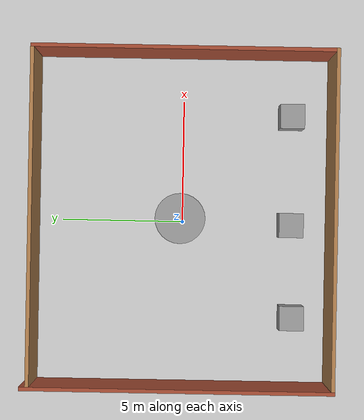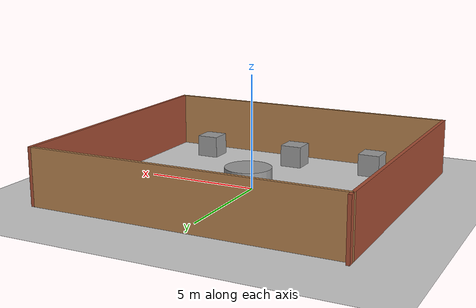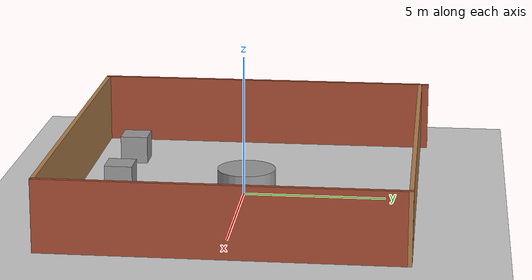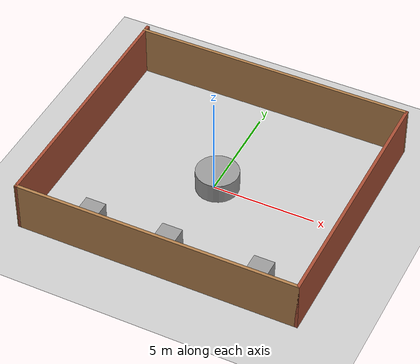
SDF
<sdf version="1.6">
 <world name="default">
  <light name="sun" type="directional">
   <pose>0 0 10 0 -0 0</pose>
   <diffuse>0.8 0.8 0.8 1</diffuse>
   <specular>0.2 0.2 0.2 1</specular>
   <attenuation>
    <range>1000</range>
    <constant>0.9</constant>
    <linear>0.01</linear>
    <quadratic>0.001</quadratic>
   </attenuation>
   <direction>-0.5 0.1 -0.9</direction>
  </light>
  <model name="ground_plane">
   <static>1</static>
   <link name="link">
    <collision name="collision">
     <geometry><plane><normal>0 0 1</normal><size>100 100</size></plane></geometry>
     <surface>
      <contact><collide_bitmask>65535</collide_bitmask></contact>
      <friction><ode><mu>100</mu><mu2>50</mu2></ode></friction>
     </surface>
    </collision>
    <visual name="visual">
     <cast_shadows>0</cast_shadows>
     <geometry><plane><normal>0 0 1</normal><size>100 100</size></plane></geometry>
     <material>
      <script><uri>file://media/materials/scripts/gazebo.material</uri><name>Gazebo/Grey</name></script>
     </material>
    </visual>
   </link>
  </model>
  <gravity>0 0 -9.8</gravity>
  <magnetic_field>6e-06 2.3e-05 -4.2e-05</magnetic_field>
  <atmosphere type="adiabatic"/>
  <physics name="default_physics" default="0" type="ode">
   <max_step_size>0.001</max_step_size>
   <real_time_factor>1</real_time_factor>
   <real_time_update_rate>1000</real_time_update_rate>
  </physics>
  <scene><ambient>0.4 0.4 0.4 1</ambient><background>0.7 0.7 0.7 1</background><shadows>1</shadows></scene>
  <audio><device>default</device></audio>
  <spherical_coordinates>
   <surface_model>EARTH_WGS84</surface_model>
   <latitude_deg>0</latitude_deg>
   <longitude_deg>0</longitude_deg>
   <elevation>0</elevation>
   <heading_deg>0</heading_deg>
  </spherical_coordinates>
  <model name="open_spaces">
   <pose>0.09407 0.123612 0 0 -0 0</pose>
   <link name="Wall_10">
    <collision name="Wall_10_Collision">
     <geometry><box><size>12.5 0.15 2.5</size></box></geometry>
     <pose>0 0 1.25 0 -0 0</pose>
    </collision>
    <visual name="Wall_10_Visual">
     <pose>0 0 1.25 0 -0 0</pose>
     <geometry><box><size>12.5 0.15 2.5</size></box></geometry>
     <material>
      <script><uri>file://media/materials/scripts/gazebo.material</uri><name>Gazebo/Bricks</name></script>
      <ambient>1 1 1 1</ambient>
     </material>
     <meta><layer>0</layer></meta>
    </visual>
    <pose>-6.8 0 0 0 -0 -1.5708</pose>
   </link>
   <link name="Wall_11">
    <collision name="Wall_11_Collision">
     <geometry><box><size>13.75 0.15 2.5</size></box></geometry>
     <pose>0 0 1.25 0 -0 0</pose>
    </collision>
    <visual name="Wall_11_Visual">
     <pose>0 0 1.25 0 -0 0</pose>
     <geometry><box><size>13.75 0.15 2.5</size></box></geometry>
     <material>
      <script><uri>file://media/materials/scripts/gazebo.material</uri><name>Gazebo/Wood</name></script>
      <ambient>1 1 1 1</ambient>
     </material>
     <meta><layer>0</layer></meta>
    </visual>
    <pose>-0 -6.175 0 0 -0 0</pose>
   </link>
   <link name="Wall_12">
    <collision name="Wall_12_Collision">
     <geometry><box><size>12.25 0.15 2.5</size></box></geometry>
     <pose>0 0 1.25 0 -0 0</pose>
    </collision>
    <visual name="Wall_12_Visual">
     <pose>0 0 1.25 0 -0 0</pose>
     <geometry><box><size>12.25 0.15 2.5</size></box></geometry>
     <material>
      <script><uri>file://media/materials/scripts/gazebo.material</uri><name>Gazebo/Bricks</name></script>
      <ambient>1 1 1 1</ambient>
     </material>
     <meta><layer>0</layer></meta>
    </visual>
    <pose>6.8 -0.125 0 0 -0 1.5708</pose>
   </link>
   <link name="Wall_13">
    <collision name="Wall_13_Collision">
     <geometry><box><size>13.75 0.15 2.5</size></box></geometry>
     <pose>0 0 1.25 0 -0 0</pose>
    </collision>
    <visual name="Wall_13_Visual">
     <pose>0 0 1.25 0 -0 0</pose>
     <geometry><box><size>13.75 0.15 2.5</size></box></geometry>
     <material>
      <script><uri>file://media/materials/scripts/gazebo.material</uri><name>Gazebo/Wood</name></script>
      <ambient>1 1 1 1</ambient>
     </material>
     <meta><layer>0</layer></meta>
    </visual>
    <pose>-0 5.925 0 0 -0 3.14159</pose>
   </link>
   <static>1</static>
  </model>
  <model name="unit_cylinder">
   <pose>0.131802 0.10665 0.499993 -7e-06 -7e-06 -2.5e-05</pose>
   <link name="link">
    <inertial>
     <mass>1</mass>
     <inertia><ixx>0.145833</ixx><ixy>0</ixy><ixz>0</ixz><iyy>0.145833</iyy><iyz>0</iyz><izz>0.125</izz></inertia>
    </inertial>
    <collision name="collision">
     <geometry><cylinder><radius>1.03384</radius><length>1</length></cylinder></geometry>
    </collision>
    <visual name="visual">
     <geometry><cylinder><radius>1.03384</radius><length>1</length></cylinder></geometry>
     <material>
      <script><name>Gazebo/Grey</name><uri>file://media/materials/scripts/gazebo.material</uri></script>
     </material>
    </visual>
   </link>
  </model>
  <model name="unit_box">
   <pose>-3.89107 -4.52818 0.499995 -1e-05 0 0</pose>
   <link name="link">
    <inertial>
     <mass>1</mass>
     <inertia>
      <ixx>0.166667</ixx>
      <ixy>0</ixy>
      <ixz>0</ixz>
      <iyy>0.166667</iyy>
      <iyz>0</iyz>
      <izz>0.166667</izz>
     </inertia>
    </inertial>
    <collision name="collision"><geometry><box><size>1 1 1</size></box></geometry></collision>
    <visual name="visual">
     <geometry><box><size>1 1 1</size></box></geometry>
     <material>
      <script><name>Gazebo/Grey</name><uri>file://media/materials/scripts/gazebo.material</uri></script>
     </material>
    </visual>
   </link>
  </model>
  <model name="unit_box_0">
   <pose>-0.076965 -4.45414 0.499995 0 1e-05 5e-06</pose>
   <link name="link">
    <inertial>
     <mass>1</mass>
     <inertia>
      <ixx>0.166667</ixx>
      <ixy>0</ixy>
      <ixz>0</ixz>
      <iyy>0.166667</iyy>
      <iyz>0</iyz>
      <izz>0.166667</izz>
     </inertia>
    </inertial>
    <collision name="collision"><geometry><box><size>1 1 1</size></box></geometry></collision>
    <visual name="visual">
     <geometry><box><size>1 1 1</size></box></geometry>
     <material>
      <script><name>Gazebo/Grey</name><uri>file://media/materials/scripts/gazebo.material</uri></script>
     </material>
    </visual>
   </link>
  </model>
  <model name="unit_box_1">
   <pose>4.39467 -4.44097 0.499995 0 1e-05 5e-06</pose>
   <link name="link">
    <inertial>
     <mass>1</mass>
     <inertia>
      <ixx>0.166667</ixx>
      <ixy>0</ixy>
      <ixz>0</ixz>
      <iyy>0.166667</iyy>
      <iyz>0</iyz>
      <izz>0.166667</izz>
     </inertia>
    </inertial>
    <collision name="collision"><geometry><box><size>1 1 1</size></box></geometry></collision>
    <visual name="visual">
     <geometry><box><size>1 1 1</size></box></geometry>
     <material>
      <script><name>Gazebo/Grey</name><uri>file://media/materials/scripts/gazebo.material</uri></script>
     </material>
    </visual>
   </link>
  </model>
 </world>
</sdf>
